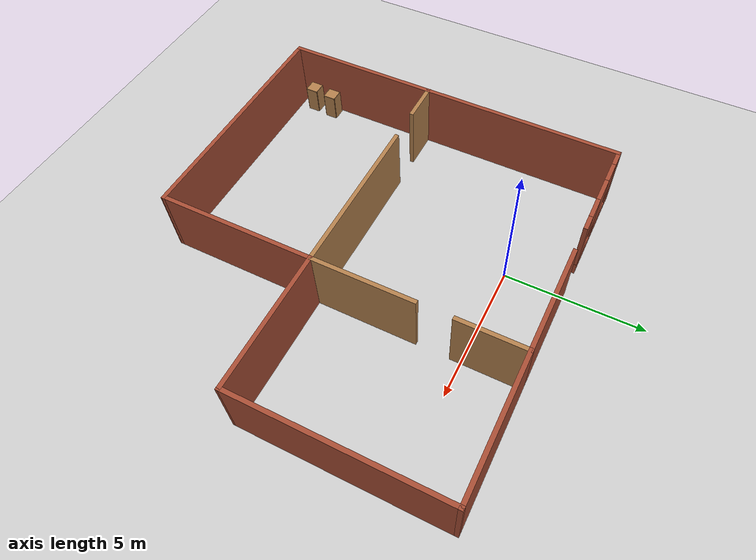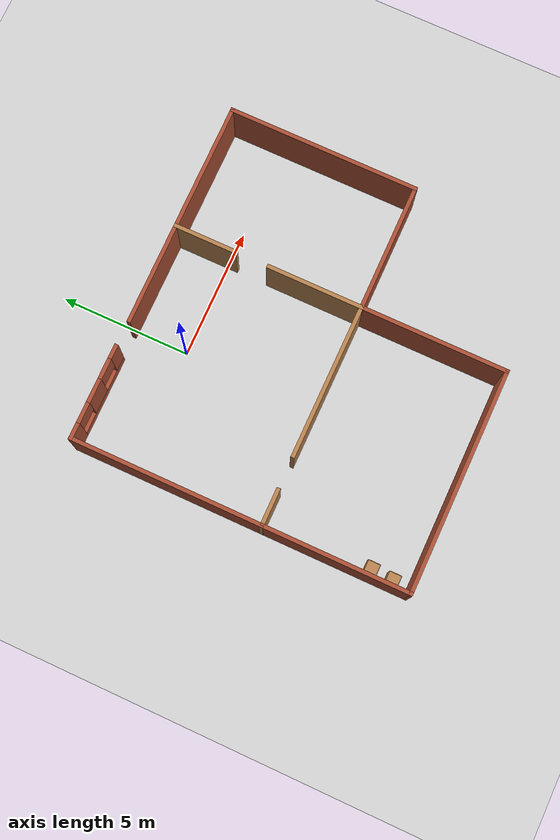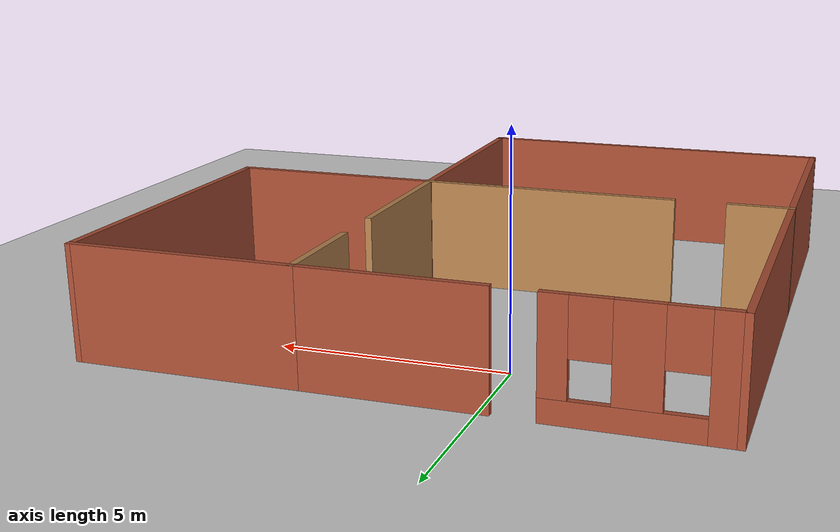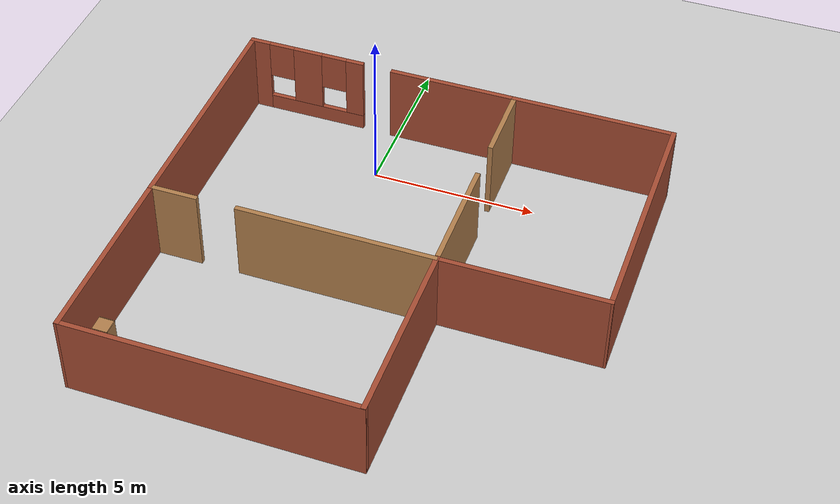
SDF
<sdf version="1.6">
 <world name="default">
  <model name="ground_plane">
   <static>1</static>
   <link name="link">
    <collision name="collision">
     <geometry><plane><normal>0 0 1</normal><size>100 100</size></plane></geometry>
     <surface>
      <contact><collide_bitmask>65535</collide_bitmask></contact>
      <friction><ode><mu>100</mu><mu2>50</mu2></ode></friction>
     </surface>
    </collision>
    <visual name="visual">
     <cast_shadows>0</cast_shadows>
     <geometry><plane><normal>0 0 1</normal><size>100 100</size></plane></geometry>
     <material>
      <script><uri>file://media/materials/scripts/gazebo.material</uri><name>Gazebo/Grey</name></script>
     </material>
    </visual>
   </link>
  </model>
  <model name="room_0">
   <pose>1.85693 -4.40399 0 0 -0 0</pose>
   <link name="Wall_17">
    <pose>-4.8743 6.45913 0 0 -0 0</pose>
    <visual name="Wall_17_Visual_0">
     <pose>-1.54646 0 1.25 0 -0 0</pose>
     <geometry><box><size>0.65708 0.15 2.5</size></box></geometry>
     <material>
      <script><uri>file://media/materials/scripts/gazebo.material</uri><name>Gazebo/Bricks</name></script>
      <ambient>1 1 1 1</ambient>
     </material>
     <meta><layer>0</layer></meta>
    </visual>
    <collision name="Wall_17_Collision_0">
     <geometry><box><size>0.65708 0.15 2.5</size></box></geometry>
     <pose>-1.54646 0 1.25 0 -0 0</pose>
    </collision>
    <visual name="Wall_17_Visual_1">
     <pose>0.32854 0 0.25 0 -0 0</pose>
     <geometry><box><size>3.09292 0.15 0.5</size></box></geometry>
     <material>
      <script><uri>file://media/materials/scripts/gazebo.material</uri><name>Gazebo/Bricks</name></script>
      <ambient>1 1 1 1</ambient>
     </material>
     <meta><layer>0</layer></meta>
    </visual>
    <collision name="Wall_17_Collision_1">
     <geometry><box><size>3.09292 0.15 0.5</size></box></geometry>
     <pose>0.32854 0 0.25 0 -0 0</pose>
    </collision>
    <visual name="Wall_17_Visual_2">
     <pose>0.046374 0 1.5 0 -0 0</pose>
     <geometry><box><size>0.928587 0.15 2</size></box></geometry>
     <material>
      <script><uri>file://media/materials/scripts/gazebo.material</uri><name>Gazebo/Bricks</name></script>
      <ambient>1 1 1 1</ambient>
     </material>
     <meta><layer>0</layer></meta>
    </visual>
    <collision name="Wall_17_Collision_2">
     <geometry><box><size>0.928587 0.15 2</size></box></geometry>
     <pose>0.046374 0 1.5 0 -0 0</pose>
    </collision>
    <visual name="Wall_17_Visual_3">
     <pose>1.59283 0 1.5 0 -0 0</pose>
     <geometry><box><size>0.564332 0.15 2</size></box></geometry>
     <material>
      <script><uri>file://media/materials/scripts/gazebo.material</uri><name>Gazebo/Bricks</name></script>
      <ambient>1 1 1 1</ambient>
     </material>
     <meta><layer>0</layer></meta>
    </visual>
    <collision name="Wall_17_Collision_3">
     <geometry><box><size>0.564332 0.15 2</size></box></geometry>
     <pose>1.59283 0 1.5 0 -0 0</pose>
    </collision>
    <visual name="Wall_17_Visual_4">
     <pose>-0.81792 0 1.9 0 -0 0</pose>
     <geometry><box><size>0.8 0.15 1.2</size></box></geometry>
     <material>
      <script><uri>file://media/materials/scripts/gazebo.material</uri><name>Gazebo/Bricks</name></script>
      <ambient>1 1 1 1</ambient>
     </material>
     <meta><layer>0</layer></meta>
    </visual>
    <collision name="Wall_17_Collision_4">
     <geometry><box><size>0.8 0.15 1.2</size></box></geometry>
     <pose>-0.81792 0 1.9 0 -0 0</pose>
    </collision>
    <visual name="Wall_17_Visual_5">
     <pose>0.910668 0 1.9 0 -0 0</pose>
     <geometry><box><size>0.8 0.15 1.2</size></box></geometry>
     <material>
      <script><uri>file://media/materials/scripts/gazebo.material</uri><name>Gazebo/Bricks</name></script>
      <ambient>1 1 1 1</ambient>
     </material>
     <meta><layer>0</layer></meta>
    </visual>
    <collision name="Wall_17_Collision_5">
     <geometry><box><size>0.8 0.15 1.2</size></box></geometry>
     <pose>0.910668 0 1.9 0 -0 0</pose>
    </collision>
   </link>
   <link name="Wall_20">
    <collision name="Wall_20_Collision">
     <geometry><box><size>4 0.15 2.5</size></box></geometry>
     <pose>0 0 1.25 0 -0 0</pose>
    </collision>
    <visual name="Wall_20_Visual">
     <pose>0 0 1.25 0 -0 0</pose>
     <geometry><box><size>4 0.15 2.5</size></box></geometry>
     <material>
      <script><uri>file://media/materials/scripts/gazebo.material</uri><name>Gazebo/Bricks</name></script>
      <ambient>1 1 1 1</ambient>
     </material>
     <meta><layer>0</layer></meta>
    </visual>
    <pose>-0.098548 6.4285 0 0 -0 0</pose>
   </link>
   <link name="Wall_21">
    <collision name="Wall_21_Collision">
     <geometry><box><size>2.5 0.15 2.5</size></box></geometry>
     <pose>0 0 1.25 0 -0 0</pose>
    </collision>
    <visual name="Wall_21_Visual">
     <pose>0 0 1.25 0 -0 0</pose>
     <geometry><box><size>2.5 0.15 2.5</size></box></geometry>
     <material>
      <script><uri>file://media/materials/scripts/gazebo.material</uri><name>Gazebo/Wood</name></script>
      <ambient>1 1 1 1</ambient>
     </material>
     <meta><layer>0</layer></meta>
    </visual>
    <pose>1.82645 5.2535 0 0 -0 -1.5708</pose>
   </link>
   <link name="Wall_23">
    <collision name="Wall_23_Collision">
     <geometry><box><size>3.76409 0.15 2.5</size></box></geometry>
     <pose>0 0 1.25 0 -0 0</pose>
    </collision>
    <visual name="Wall_23_Visual">
     <pose>0 0 1.25 0 -0 0</pose>
     <geometry><box><size>3.76409 0.15 2.5</size></box></geometry>
     <material>
      <script><uri>file://media/materials/scripts/gazebo.material</uri><name>Gazebo/Wood</name></script>
      <ambient>1 1 1 1</ambient>
     </material>
     <meta><layer>0</layer></meta>
    </visual>
    <pose>1.82733 0.943634 0 0 -0 -1.5708</pose>
   </link>
   <link name="Wall_24">
    <collision name="Wall_24_Collision">
     <geometry><box><size>6.00006 0.15 2.5</size></box></geometry>
     <pose>0 0 1.25 0 -0 0</pose>
    </collision>
    <visual name="Wall_24_Visual">
     <pose>0 0 1.25 0 -0 0</pose>
     <geometry><box><size>6.00006 0.15 2.5</size></box></geometry>
     <material>
      <script><uri>file://media/materials/scripts/gazebo.material</uri><name>Gazebo/Wood</name></script>
      <ambient>1 1 1 1</ambient>
     </material>
     <meta><layer>0</layer></meta>
    </visual>
    <pose>-1.09767 -0.856366 0 0 -0 3.13918</pose>
   </link>
   <link name="Wall_27">
    <collision name="Wall_27_Collision">
     <geometry><box><size>1.5 0.15 2.5</size></box></geometry>
     <pose>0 0 1.25 0 -0 0</pose>
    </collision>
    <visual name="Wall_27_Visual">
     <pose>0 0 1.25 0 -0 0</pose>
     <geometry><box><size>1.5 0.15 2.5</size></box></geometry>
     <material>
      <script><uri>file://media/materials/scripts/gazebo.material</uri><name>Gazebo/Wood</name></script>
      <ambient>1 1 1 1</ambient>
     </material>
     <meta><layer>0</layer></meta>
    </visual>
    <pose>-6.00257 -0.857586 0 0 -0 3.14159</pose>
   </link>
   <link name="Wall_30">
    <collision name="Wall_30_Collision">
     <geometry><box><size>7.47105 0.15 2.5</size></box></geometry>
     <pose>0 0 1.25 0 -0 0</pose>
    </collision>
    <visual name="Wall_30_Visual">
     <pose>0 0 1.25 0 -0 0</pose>
     <geometry><box><size>7.47105 0.15 2.5</size></box></geometry>
     <material>
      <script><uri>file://media/materials/scripts/gazebo.material</uri><name>Gazebo/Bricks</name></script>
      <ambient>1 1 1 1</ambient>
     </material>
     <meta><layer>0</layer></meta>
    </visual>
    <pose>-6.67491 2.80293 0 0 -0 1.57089</pose>
   </link>
   <link name="Wall_32">
    <collision name="Wall_32_Collision">
     <geometry><box><size>5.00007 0.15 2.5</size></box></geometry>
     <pose>0 0 1.25 0 -0 0</pose>
    </collision>
    <visual name="Wall_32_Visual">
     <pose>0 0 1.25 0 -0 0</pose>
     <geometry><box><size>5.00007 0.15 2.5</size></box></geometry>
     <material>
      <script><uri>file://media/materials/scripts/gazebo.material</uri><name>Gazebo/Bricks</name></script>
      <ambient>1 1 1 1</ambient>
     </material>
     <meta><layer>0</layer></meta>
    </visual>
    <pose>4.25232 -0.856366 0 0 -0 0.002904</pose>
   </link>
   <link name="Wall_33">
    <collision name="Wall_33_Collision">
     <geometry><box><size>7.42782 0.15 2.5</size></box></geometry>
     <pose>0 0 1.25 0 -0 0</pose>
    </collision>
    <visual name="Wall_33_Visual">
     <pose>0 0 1.25 0 -0 0</pose>
     <geometry><box><size>7.42782 0.15 2.5</size></box></geometry>
     <material>
      <script><uri>file://media/materials/scripts/gazebo.material</uri><name>Gazebo/Bricks</name></script>
      <ambient>1 1 1 1</ambient>
     </material>
     <meta><layer>0</layer></meta>
    </visual>
    <pose>6.67689 2.78959 0 0 -0 1.57092</pose>
   </link>
   <link name="Wall_34">
    <collision name="Wall_34_Collision">
     <geometry><box><size>5 0.15 2.5</size></box></geometry>
     <pose>0 0 1.25 0 -0 0</pose>
    </collision>
    <visual name="Wall_34_Visual">
     <pose>0 0 1.25 0 -0 0</pose>
     <geometry><box><size>5 0.15 2.5</size></box></geometry>
     <material>
      <script><uri>file://media/materials/scripts/gazebo.material</uri><name>Gazebo/Bricks</name></script>
      <ambient>1 1 1 1</ambient>
     </material>
     <meta><layer>0</layer></meta>
    </visual>
    <pose>4.25145 6.4285 0 0 -0 3.14159</pose>
   </link>
   <link name="Wall_36">
    <collision name="Wall_36_Collision">
     <geometry><box><size>5.75 0.15 2.5</size></box></geometry>
     <pose>0 0 1.25 0 -0 0</pose>
    </collision>
    <visual name="Wall_36_Visual">
     <pose>0 0 1.25 0 -0 0</pose>
     <geometry><box><size>5.75 0.15 2.5</size></box></geometry>
     <material>
      <script><uri>file://media/materials/scripts/gazebo.material</uri><name>Gazebo/Bricks</name></script>
      <ambient>1 1 1 1</ambient>
     </material>
     <meta><layer>0</layer></meta>
    </visual>
    <pose>-6.67455 -3.65759 0 0 -0 -1.5708</pose>
   </link>
   <link name="Wall_37">
    <collision name="Wall_37_Collision">
     <geometry><box><size>8.65195 0.15 2.5</size></box></geometry>
     <pose>0 0 1.25 0 -0 0</pose>
    </collision>
    <visual name="Wall_37_Visual">
     <pose>0 0 1.25 0 -0 0</pose>
     <geometry><box><size>8.65195 0.15 2.5</size></box></geometry>
     <material>
      <script><uri>file://media/materials/scripts/gazebo.material</uri><name>Gazebo/Bricks</name></script>
      <ambient>1 1 1 1</ambient>
     </material>
     <meta><layer>0</layer></meta>
    </visual>
    <pose>-2.42361 -6.4605 0 0 -0 -0.000685</pose>
   </link>
   <link name="Wall_38">
    <collision name="Wall_38_Collision">
     <geometry><box><size>5.75 0.15 2.5</size></box></geometry>
     <pose>0 0 1.25 0 -0 0</pose>
    </collision>
    <visual name="Wall_38_Visual">
     <pose>0 0 1.25 0 -0 0</pose>
     <geometry><box><size>5.75 0.15 2.5</size></box></geometry>
     <material>
      <script><uri>file://media/materials/scripts/gazebo.material</uri><name>Gazebo/Bricks</name></script>
      <ambient>1 1 1 1</ambient>
     </material>
     <meta><layer>0</layer></meta>
    </visual>
    <pose>1.82733 -3.64284 0 0 -0 1.5708</pose>
   </link>
   <static>1</static>
  </model>
  <model name="cabinet">
   <static>1</static>
   <link name="cabinet_bottom_plate">
    <inertial>
     <pose>0 0 -1 0 -0 0</pose>
     <inertia><ixx>2.05</ixx><ixy>0</ixy><ixz>0</ixz><iyy>2.05</iyy><iyz>0</iyz><izz>2.05</izz></inertia>
     <mass>25</mass>
    </inertial>
    <collision name="cabinet_bottom_plate_geom">
     <pose>0 0 0.01 0 -0 0</pose>
     <geometry><box><size>0.45 0.45 0.02</size></box></geometry>
    </collision>
    <visual name="cabinet_bottom_plate_geom_visual">
     <pose>0 0 0.01 0 -0 0</pose>
     <geometry><box><size>0.45 0.45 0.02</size></box></geometry>
     <material>
      <script><uri>file://media/materials/scripts/gazebo.material</uri><name>Gazebo/Wood</name></script>
     </material>
    </visual>
    <collision name="cabinet_bottom_plate_geom_cabinet_back_plate">
     <pose>0.235 0 0.51 0 -0 0</pose>
     <geometry><box><size>0.02 0.45 1.02</size></box></geometry>
    </collision>
    <visual name="cabinet_bottom_plate_geom_cabinet_back_plate_visual">
     <pose>0.235 0 0.51 0 -0 0</pose>
     <geometry><box><size>0.02 0.45 1.02</size></box></geometry>
     <material>
      <script><uri>file://media/materials/scripts/gazebo.material</uri><name>Gazebo/Wood</name></script>
     </material>
    </visual>
    <collision name="cabinet_bottom_plate_geom_cabinet_left_plate">
     <pose>0 0.235 0.51 0 -0 0</pose>
     <geometry><box><size>0.45 0.02 1.02</size></box></geometry>
    </collision>
    <visual name="cabinet_bottom_plate_geom_cabinet_left_plate_visual">
     <pose>0 0.235 0.51 0 -0 0</pose>
     <geometry><box><size>0.45 0.02 1.02</size></box></geometry>
     <material>
      <script><uri>file://media/materials/scripts/gazebo.material</uri><name>Gazebo/Wood</name></script>
     </material>
    </visual>
    <collision name="cabinet_bottom_plate_geom_cabinet_middle_plate">
     <pose>0 0 0.51 0 -0 0</pose>
     <geometry><box><size>0.45 0.45 0.02</size></box></geometry>
    </collision>
    <visual name="cabinet_bottom_plate_geom_cabinet_middle_plate_visual">
     <pose>0 0 0.51 0 -0 0</pose>
     <geometry><box><size>0.45 0.45 0.02</size></box></geometry>
     <material>
      <script><uri>file://media/materials/scripts/gazebo.material</uri><name>Gazebo/Wood</name></script>
     </material>
    </visual>
    <collision name="cabinet_bottom_plate_geom_cabinet_right_plate">
     <pose>0 -0.235 0.51 0 -0 0</pose>
     <geometry><box><size>0.45 0.02 1.02</size></box></geometry>
    </collision>
    <visual name="cabinet_bottom_plate_geom_cabinet_right_plate_visual">
     <pose>0 -0.235 0.51 0 -0 0</pose>
     <geometry><box><size>0.45 0.02 1.02</size></box></geometry>
     <material>
      <script><uri>file://media/materials/scripts/gazebo.material</uri><name>Gazebo/Wood</name></script>
     </material>
    </visual>
    <collision name="cabinet_bottom_plate_geom_cabinet_top_plate">
     <pose>0 0 1.01 0 -0 0</pose>
     <geometry><box><size>0.45 0.45 0.02</size></box></geometry>
    </collision>
    <visual name="cabinet_bottom_plate_geom_cabinet_top_plate_visual">
     <pose>0 0 1.01 0 -0 0</pose>
     <geometry><box><size>0.45 0.45 0.02</size></box></geometry>
     <material>
      <script><uri>file://media/materials/scripts/gazebo.material</uri><name>Gazebo/Wood</name></script>
     </material>
    </visual>
   </link>
   <pose>-4.49938 -10.1813 0 0 -0 0</pose>
  </model>
  <model name="cabinet_0">
   <static>1</static>
   <link name="cabinet_bottom_plate">
    <inertial>
     <pose>0 0 -1 0 -0 0</pose>
     <inertia><ixx>2.05</ixx><ixy>0</ixy><ixz>0</ixz><iyy>2.05</iyy><iyz>0</iyz><izz>2.05</izz></inertia>
     <mass>25</mass>
    </inertial>
    <collision name="cabinet_bottom_plate_geom">
     <pose>0 0 0.01 0 -0 0</pose>
     <geometry><box><size>0.45 0.45 0.02</size></box></geometry>
    </collision>
    <visual name="cabinet_bottom_plate_geom_visual">
     <pose>0 0 0.01 0 -0 0</pose>
     <geometry><box><size>0.45 0.45 0.02</size></box></geometry>
     <material>
      <script><uri>file://media/materials/scripts/gazebo.material</uri><name>Gazebo/Wood</name></script>
     </material>
    </visual>
    <collision name="cabinet_bottom_plate_geom_cabinet_back_plate">
     <pose>0.235 0 0.51 0 -0 0</pose>
     <geometry><box><size>0.02 0.45 1.02</size></box></geometry>
    </collision>
    <visual name="cabinet_bottom_plate_geom_cabinet_back_plate_visual">
     <pose>0.235 0 0.51 0 -0 0</pose>
     <geometry><box><size>0.02 0.45 1.02</size></box></geometry>
     <material>
      <script><uri>file://media/materials/scripts/gazebo.material</uri><name>Gazebo/Wood</name></script>
     </material>
    </visual>
    <collision name="cabinet_bottom_plate_geom_cabinet_left_plate">
     <pose>0 0.235 0.51 0 -0 0</pose>
     <geometry><box><size>0.45 0.02 1.02</size></box></geometry>
    </collision>
    <visual name="cabinet_bottom_plate_geom_cabinet_left_plate_visual">
     <pose>0 0.235 0.51 0 -0 0</pose>
     <geometry><box><size>0.45 0.02 1.02</size></box></geometry>
     <material>
      <script><uri>file://media/materials/scripts/gazebo.material</uri><name>Gazebo/Wood</name></script>
     </material>
    </visual>
    <collision name="cabinet_bottom_plate_geom_cabinet_middle_plate">
     <pose>0 0 0.51 0 -0 0</pose>
     <geometry><box><size>0.45 0.45 0.02</size></box></geometry>
    </collision>
    <visual name="cabinet_bottom_plate_geom_cabinet_middle_plate_visual">
     <pose>0 0 0.51 0 -0 0</pose>
     <geometry><box><size>0.45 0.45 0.02</size></box></geometry>
     <material>
      <script><uri>file://media/materials/scripts/gazebo.material</uri><name>Gazebo/Wood</name></script>
     </material>
    </visual>
    <collision name="cabinet_bottom_plate_geom_cabinet_right_plate">
     <pose>0 -0.235 0.51 0 -0 0</pose>
     <geometry><box><size>0.45 0.02 1.02</size></box></geometry>
    </collision>
    <visual name="cabinet_bottom_plate_geom_cabinet_right_plate_visual">
     <pose>0 -0.235 0.51 0 -0 0</pose>
     <geometry><box><size>0.45 0.02 1.02</size></box></geometry>
     <material>
      <script><uri>file://media/materials/scripts/gazebo.material</uri><name>Gazebo/Wood</name></script>
     </material>
    </visual>
    <collision name="cabinet_bottom_plate_geom_cabinet_top_plate">
     <pose>0 0 1.01 0 -0 0</pose>
     <geometry><box><size>0.45 0.45 0.02</size></box></geometry>
    </collision>
    <visual name="cabinet_bottom_plate_geom_cabinet_top_plate_visual">
     <pose>0 0 1.01 0 -0 0</pose>
     <geometry><box><size>0.45 0.45 0.02</size></box></geometry>
     <material>
      <script><uri>file://media/materials/scripts/gazebo.material</uri><name>Gazebo/Wood</name></script>
     </material>
    </visual>
   </link>
   <pose>-4.44718 -9.34571 0 0 -0 0</pose>
  </model>
 </world>
</sdf>
